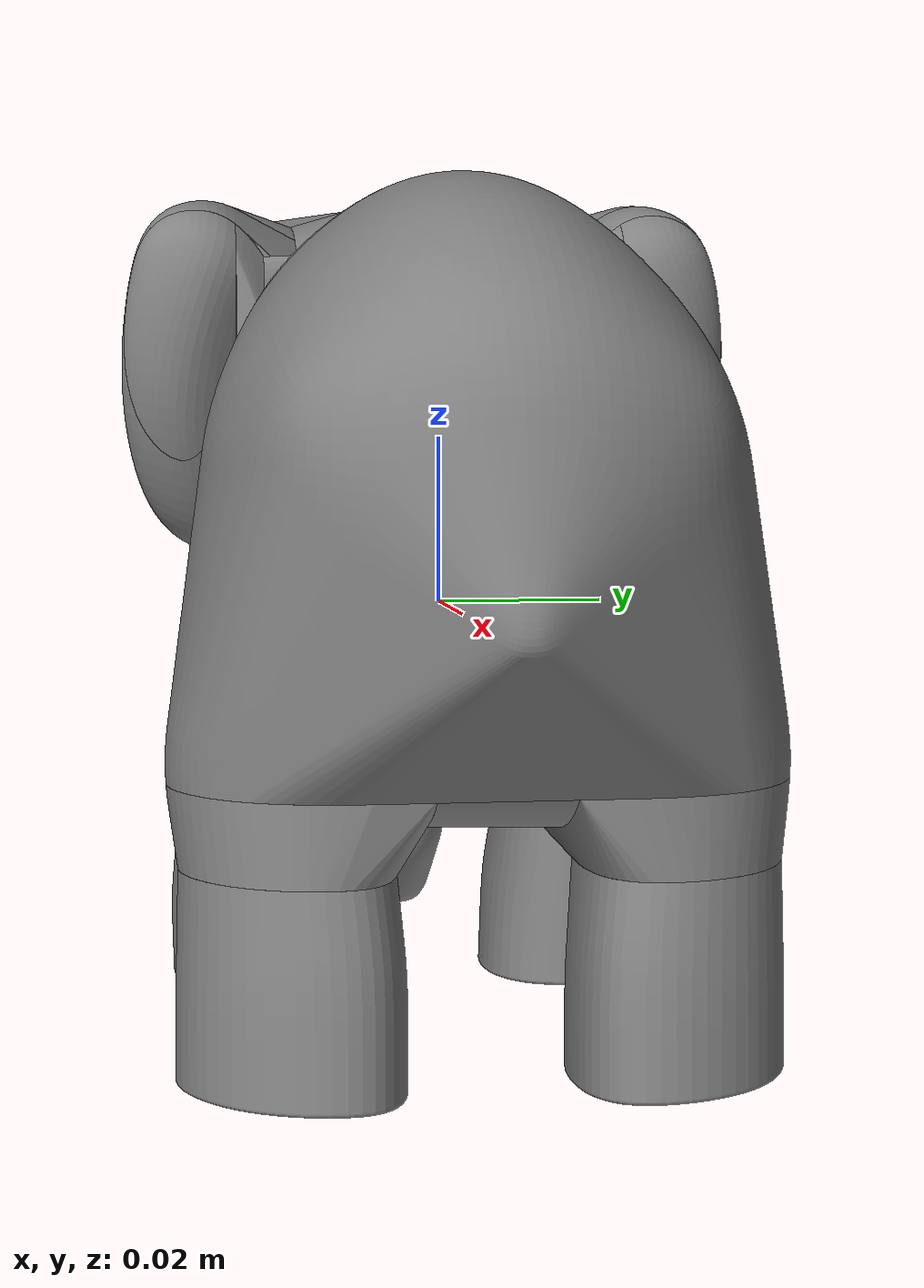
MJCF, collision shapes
<mujoco model="elephant">
  <compiler meshdir="."/>

  <asset>
    <mesh name="elephant" file="elephant.stl"/>
    <mesh name="elephant_collision_hull_000" file="elephant_collision_hull_000.stl"/>
    <mesh name="elephant_collision_hull_001" file="elephant_collision_hull_001.stl"/>
    <mesh name="elephant_collision_hull_002" file="elephant_collision_hull_002.stl"/>
    <mesh name="elephant_collision_hull_003" file="elephant_collision_hull_003.stl"/>
    <mesh name="elephant_collision_hull_004" file="elephant_collision_hull_004.stl"/>
    <mesh name="elephant_collision_hull_005" file="elephant_collision_hull_005.stl"/>
    <mesh name="elephant_collision_hull_006" file="elephant_collision_hull_006.stl"/>
    <mesh name="elephant_collision_hull_007" file="elephant_collision_hull_007.stl"/>
    <mesh name="elephant_collision_hull_008" file="elephant_collision_hull_008.stl"/>
    <mesh name="elephant_collision_hull_009" file="elephant_collision_hull_009.stl"/>
    <mesh name="elephant_collision_hull_010" file="elephant_collision_hull_010.stl"/>
    <mesh name="elephant_collision_hull_011" file="elephant_collision_hull_011.stl"/>
    <mesh name="elephant_collision_hull_012" file="elephant_collision_hull_012.stl"/>
    <mesh name="elephant_collision_hull_013" file="elephant_collision_hull_013.stl"/>
    <mesh name="elephant_collision_hull_014" file="elephant_collision_hull_014.stl"/>
    <mesh name="elephant_collision_hull_015" file="elephant_collision_hull_015.stl"/>
    <mesh name="elephant_collision_hull_016" file="elephant_collision_hull_016.stl"/>
    <mesh name="elephant_collision_hull_017" file="elephant_collision_hull_017.stl"/>
    <mesh name="elephant_collision_hull_018" file="elephant_collision_hull_018.stl"/>
    <mesh name="elephant_collision_hull_019" file="elephant_collision_hull_019.stl"/>
    <mesh name="elephant_collision_hull_020" file="elephant_collision_hull_020.stl"/>
    <mesh name="elephant_collision_hull_021" file="elephant_collision_hull_021.stl"/>
    <mesh name="elephant_collision_hull_022" file="elephant_collision_hull_022.stl"/>
    <mesh name="elephant_collision_hull_023" file="elephant_collision_hull_023.stl"/>
    <mesh name="elephant_collision_hull_024" file="elephant_collision_hull_024.stl"/>
    <mesh name="elephant_collision_hull_025" file="elephant_collision_hull_025.stl"/>
    <mesh name="elephant_collision_hull_026" file="elephant_collision_hull_026.stl"/>
    <mesh name="elephant_collision_hull_027" file="elephant_collision_hull_027.stl"/>
    <mesh name="elephant_collision_hull_028" file="elephant_collision_hull_028.stl"/>
    <mesh name="elephant_collision_hull_029" file="elephant_collision_hull_029.stl"/>
    <mesh name="elephant_collision_hull_030" file="elephant_collision_hull_030.stl"/>
    <mesh name="elephant_collision_hull_031" file="elephant_collision_hull_031.stl"/>
    <mesh name="elephant_collision_hull_032" file="elephant_collision_hull_032.stl"/>
    <mesh name="elephant_collision_hull_033" file="elephant_collision_hull_033.stl"/>
    <mesh name="elephant_collision_hull_034" file="elephant_collision_hull_034.stl"/>
    <mesh name="elephant_collision_hull_035" file="elephant_collision_hull_035.stl"/>
    <mesh name="elephant_collision_hull_036" file="elephant_collision_hull_036.stl"/>
    <mesh name="elephant_collision_hull_037" file="elephant_collision_hull_037.stl"/>
    <mesh name="elephant_collision_hull_038" file="elephant_collision_hull_038.stl"/>
    <mesh name="elephant_collision_hull_039" file="elephant_collision_hull_039.stl"/>
    <mesh name="elephant_collision_hull_040" file="elephant_collision_hull_040.stl"/>
    <mesh name="elephant_collision_hull_041" file="elephant_collision_hull_041.stl"/>
    <mesh name="elephant_collision_hull_042" file="elephant_collision_hull_042.stl"/>
    <mesh name="elephant_collision_hull_043" file="elephant_collision_hull_043.stl"/>
    <mesh name="elephant_collision_hull_044" file="elephant_collision_hull_044.stl"/>
    <mesh name="elephant_collision_hull_045" file="elephant_collision_hull_045.stl"/>
    <mesh name="elephant_collision_hull_046" file="elephant_collision_hull_046.stl"/>
    <mesh name="elephant_collision_hull_047" file="elephant_collision_hull_047.stl"/>
    <mesh name="elephant_collision_hull_048" file="elephant_collision_hull_048.stl"/>
  </asset>

  <worldbody>
    <body name="object">
      <freejoint name="object_joint"/>
      <geom name="object_visual" type="mesh" mesh="elephant"
            contype="0" conaffinity="0" group="2" rgba="0.9 0.9 0.8 1" mass="0"/>
      <geom name="elephant_collision_hull_000_collision" type="mesh" mesh="elephant_collision_hull_000"
            mass="0.0010" condim="6" friction="1.0 0.002 0.002" priority="1"/>
      <geom name="elephant_collision_hull_001_collision" type="mesh" mesh="elephant_collision_hull_001"
            mass="0.0010" condim="6" friction="1.0 0.002 0.002" priority="1"/>
      <geom name="elephant_collision_hull_002_collision" type="mesh" mesh="elephant_collision_hull_002"
            mass="0.0010" condim="6" friction="1.0 0.002 0.002" priority="1"/>
      <geom name="elephant_collision_hull_003_collision" type="mesh" mesh="elephant_collision_hull_003"
            mass="0.0010" condim="6" friction="1.0 0.002 0.002" priority="1"/>
      <geom name="elephant_collision_hull_004_collision" type="mesh" mesh="elephant_collision_hull_004"
            mass="0.0010" condim="6" friction="1.0 0.002 0.002" priority="1"/>
      <geom name="elephant_collision_hull_005_collision" type="mesh" mesh="elephant_collision_hull_005"
            mass="0.0010" condim="6" friction="1.0 0.002 0.002" priority="1"/>
      <geom name="elephant_collision_hull_006_collision" type="mesh" mesh="elephant_collision_hull_006"
            mass="0.0010" condim="6" friction="1.0 0.002 0.002" priority="1"/>
      <geom name="elephant_collision_hull_007_collision" type="mesh" mesh="elephant_collision_hull_007"
            mass="0.0010" condim="6" friction="1.0 0.002 0.002" priority="1"/>
      <geom name="elephant_collision_hull_008_collision" type="mesh" mesh="elephant_collision_hull_008"
            mass="0.0010" condim="6" friction="1.0 0.002 0.002" priority="1"/>
      <geom name="elephant_collision_hull_009_collision" type="mesh" mesh="elephant_collision_hull_009"
            mass="0.0010" condim="6" friction="1.0 0.002 0.002" priority="1"/>
      <geom name="elephant_collision_hull_010_collision" type="mesh" mesh="elephant_collision_hull_010"
            mass="0.0010" condim="6" friction="1.0 0.002 0.002" priority="1"/>
      <geom name="elephant_collision_hull_011_collision" type="mesh" mesh="elephant_collision_hull_011"
            mass="0.0010" condim="6" friction="1.0 0.002 0.002" priority="1"/>
      <geom name="elephant_collision_hull_012_collision" type="mesh" mesh="elephant_collision_hull_012"
            mass="0.0010" condim="6" friction="1.0 0.002 0.002" priority="1"/>
      <geom name="elephant_collision_hull_013_collision" type="mesh" mesh="elephant_collision_hull_013"
            mass="0.0010" condim="6" friction="1.0 0.002 0.002" priority="1"/>
      <geom name="elephant_collision_hull_014_collision" type="mesh" mesh="elephant_collision_hull_014"
            mass="0.0010" condim="6" friction="1.0 0.002 0.002" priority="1"/>
      <geom name="elephant_collision_hull_015_collision" type="mesh" mesh="elephant_collision_hull_015"
            mass="0.0010" condim="6" friction="1.0 0.002 0.002" priority="1"/>
      <geom name="elephant_collision_hull_016_collision" type="mesh" mesh="elephant_collision_hull_016"
            mass="0.0010" condim="6" friction="1.0 0.002 0.002" priority="1"/>
      <geom name="elephant_collision_hull_017_collision" type="mesh" mesh="elephant_collision_hull_017"
            mass="0.0010" condim="6" friction="1.0 0.002 0.002" priority="1"/>
      <geom name="elephant_collision_hull_018_collision" type="mesh" mesh="elephant_collision_hull_018"
            mass="0.0010" condim="6" friction="1.0 0.002 0.002" priority="1"/>
      <geom name="elephant_collision_hull_019_collision" type="mesh" mesh="elephant_collision_hull_019"
            mass="0.0010" condim="6" friction="1.0 0.002 0.002" priority="1"/>
      <geom name="elephant_collision_hull_020_collision" type="mesh" mesh="elephant_collision_hull_020"
            mass="0.0010" condim="6" friction="1.0 0.002 0.002" priority="1"/>
      <geom name="elephant_collision_hull_021_collision" type="mesh" mesh="elephant_collision_hull_021"
            mass="0.0010" condim="6" friction="1.0 0.002 0.002" priority="1"/>
      <geom name="elephant_collision_hull_022_collision" type="mesh" mesh="elephant_collision_hull_022"
            mass="0.0010" condim="6" friction="1.0 0.002 0.002" priority="1"/>
      <geom name="elephant_collision_hull_023_collision" type="mesh" mesh="elephant_collision_hull_023"
            mass="0.0010" condim="6" friction="1.0 0.002 0.002" priority="1"/>
      <geom name="elephant_collision_hull_024_collision" type="mesh" mesh="elephant_collision_hull_024"
            mass="0.0010" condim="6" friction="1.0 0.002 0.002" priority="1"/>
      <geom name="elephant_collision_hull_025_collision" type="mesh" mesh="elephant_collision_hull_025"
            mass="0.0010" condim="6" friction="1.0 0.002 0.002" priority="1"/>
      <geom name="elephant_collision_hull_026_collision" type="mesh" mesh="elephant_collision_hull_026"
            mass="0.0010" condim="6" friction="1.0 0.002 0.002" priority="1"/>
      <geom name="elephant_collision_hull_027_collision" type="mesh" mesh="elephant_collision_hull_027"
            mass="0.0010" condim="6" friction="1.0 0.002 0.002" priority="1"/>
      <geom name="elephant_collision_hull_028_collision" type="mesh" mesh="elephant_collision_hull_028"
            mass="0.0010" condim="6" friction="1.0 0.002 0.002" priority="1"/>
      <geom name="elephant_collision_hull_029_collision" type="mesh" mesh="elephant_collision_hull_029"
            mass="0.0010" condim="6" friction="1.0 0.002 0.002" priority="1"/>
      <geom name="elephant_collision_hull_030_collision" type="mesh" mesh="elephant_collision_hull_030"
            mass="0.0010" condim="6" friction="1.0 0.002 0.002" priority="1"/>
      <geom name="elephant_collision_hull_031_collision" type="mesh" mesh="elephant_collision_hull_031"
            mass="0.0010" condim="6" friction="1.0 0.002 0.002" priority="1"/>
      <geom name="elephant_collision_hull_032_collision" type="mesh" mesh="elephant_collision_hull_032"
            mass="0.0010" condim="6" friction="1.0 0.002 0.002" priority="1"/>
      <geom name="elephant_collision_hull_033_collision" type="mesh" mesh="elephant_collision_hull_033"
            mass="0.0010" condim="6" friction="1.0 0.002 0.002" priority="1"/>
      <geom name="elephant_collision_hull_034_collision" type="mesh" mesh="elephant_collision_hull_034"
            mass="0.0010" condim="6" friction="1.0 0.002 0.002" priority="1"/>
      <geom name="elephant_collision_hull_035_collision" type="mesh" mesh="elephant_collision_hull_035"
            mass="0.0010" condim="6" friction="1.0 0.002 0.002" priority="1"/>
      <geom name="elephant_collision_hull_036_collision" type="mesh" mesh="elephant_collision_hull_036"
            mass="0.0010" condim="6" friction="1.0 0.002 0.002" priority="1"/>
      <geom name="elephant_collision_hull_037_collision" type="mesh" mesh="elephant_collision_hull_037"
            mass="0.0010" condim="6" friction="1.0 0.002 0.002" priority="1"/>
      <geom name="elephant_collision_hull_038_collision" type="mesh" mesh="elephant_collision_hull_038"
            mass="0.0010" condim="6" friction="1.0 0.002 0.002" priority="1"/>
      <geom name="elephant_collision_hull_039_collision" type="mesh" mesh="elephant_collision_hull_039"
            mass="0.0010" condim="6" friction="1.0 0.002 0.002" priority="1"/>
      <geom name="elephant_collision_hull_040_collision" type="mesh" mesh="elephant_collision_hull_040"
            mass="0.0010" condim="6" friction="1.0 0.002 0.002" priority="1"/>
      <geom name="elephant_collision_hull_041_collision" type="mesh" mesh="elephant_collision_hull_041"
            mass="0.0010" condim="6" friction="1.0 0.002 0.002" priority="1"/>
      <geom name="elephant_collision_hull_042_collision" type="mesh" mesh="elephant_collision_hull_042"
            mass="0.0010" condim="6" friction="1.0 0.002 0.002" priority="1"/>
      <geom name="elephant_collision_hull_043_collision" type="mesh" mesh="elephant_collision_hull_043"
            mass="0.0010" condim="6" friction="1.0 0.002 0.002" priority="1"/>
      <geom name="elephant_collision_hull_044_collision" type="mesh" mesh="elephant_collision_hull_044"
            mass="0.0010" condim="6" friction="1.0 0.002 0.002" priority="1"/>
      <geom name="elephant_collision_hull_045_collision" type="mesh" mesh="elephant_collision_hull_045"
            mass="0.0010" condim="6" friction="1.0 0.002 0.002" priority="1"/>
      <geom name="elephant_collision_hull_046_collision" type="mesh" mesh="elephant_collision_hull_046"
            mass="0.0010" condim="6" friction="1.0 0.002 0.002" priority="1"/>
      <geom name="elephant_collision_hull_047_collision" type="mesh" mesh="elephant_collision_hull_047"
            mass="0.0010" condim="6" friction="1.0 0.002 0.002" priority="1"/>
      <geom name="elephant_collision_hull_048_collision" type="mesh" mesh="elephant_collision_hull_048"
            mass="0.0010" condim="6" friction="1.0 0.002 0.002" priority="1"/>
    </body>
  </worldbody>
</mujoco>
